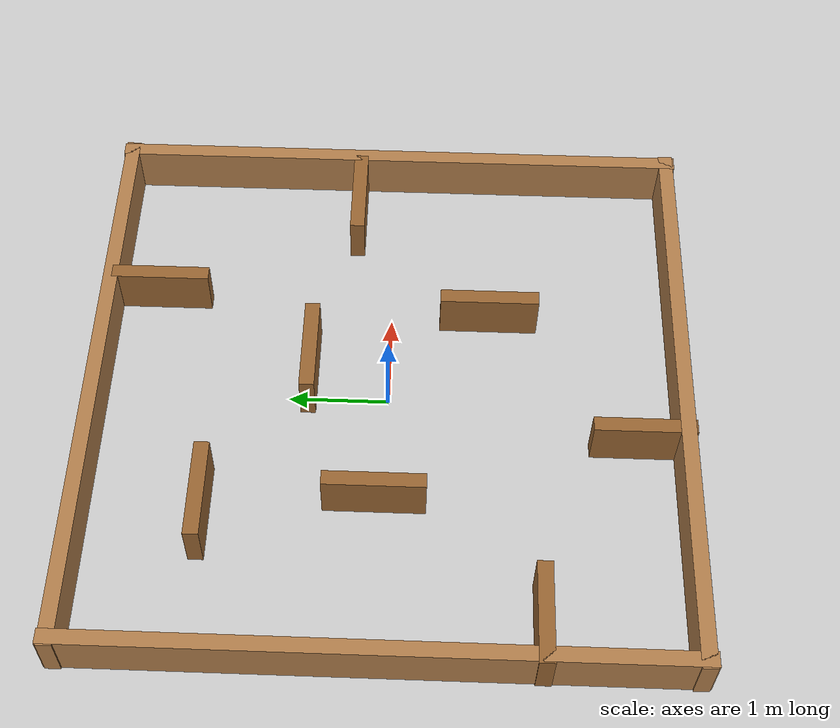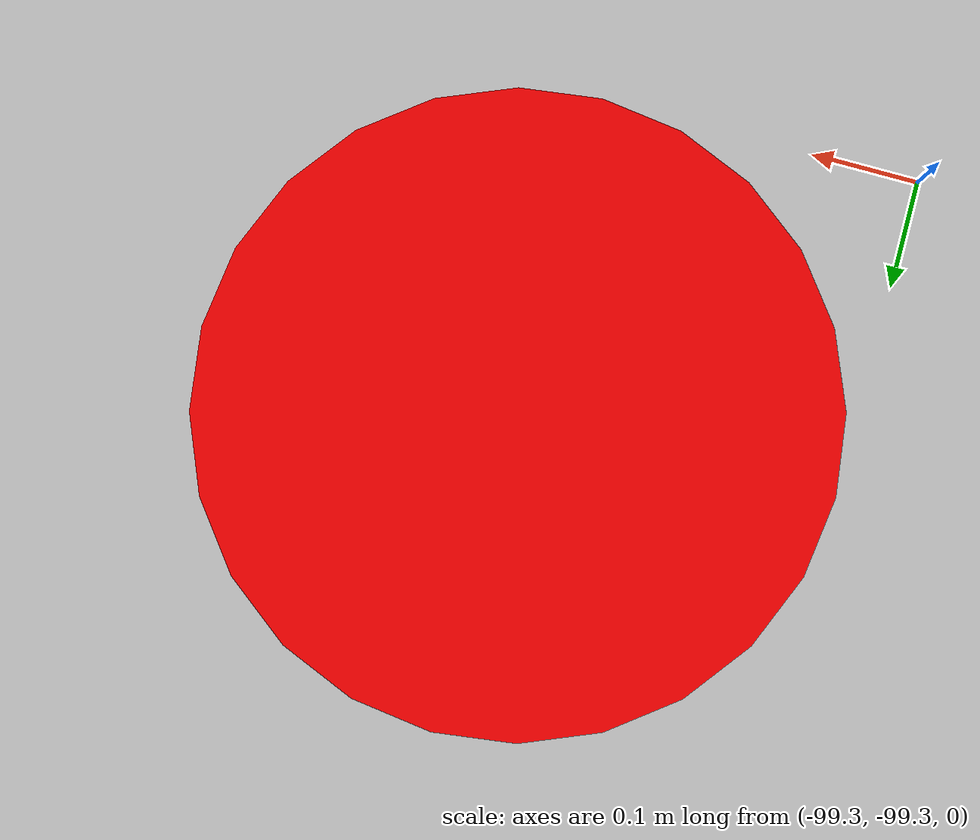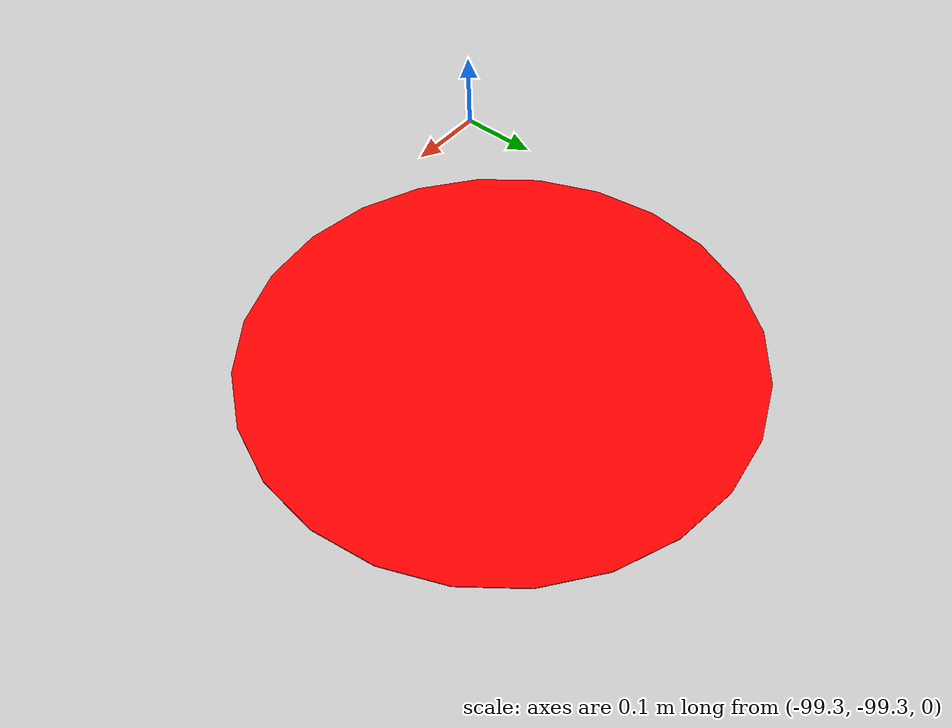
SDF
<?xml version="1.0" ?>
<sdf version="1.8">
  <world name="drl_stage7">

    <plugin filename="gz-sim-physics-system"           name="gz::sim::systems::Physics"/>
    <plugin filename="gz-sim-sensors-system"           name="gz::sim::systems::Sensors">
      <render_engine>ogre2</render_engine>
    </plugin>
    <plugin filename="gz-sim-user-commands-system"     name="gz::sim::systems::UserCommands"/>
    <plugin filename="gz-sim-scene-broadcaster-system" name="gz::sim::systems::SceneBroadcaster"/>

    <physics name="1ms" type="ignored">
      <max_step_size>0.001</max_step_size>
      <real_time_factor>1.0</real_time_factor>
    </physics>
    <scene>
      <ambient>0.4 0.4 0.4 1</ambient>
      <background>0.7 0.7 0.7 1</background>
    </scene>

    <light type="directional" name="sun">
      <cast_shadows>true</cast_shadows>
      <pose>0 0 10 0 0 0</pose>
      <diffuse>0.8 0.8 0.8 1</diffuse>
      <specular>0.2 0.2 0.2 1</specular>
      <direction>-0.5 0.1 -0.9</direction>
    </light>

    <model name="ground_plane">
      <static>true</static>
      <link name="link">
        <collision name="collision">
          <geometry><plane><normal>0 0 1</normal><size>20 20</size></plane></geometry>
        </collision>
        <visual name="visual">
          <geometry><plane><normal>0 0 1</normal><size>20 20</size></plane></geometry>
          <material><ambient>0.8 0.8 0.8 1</ambient><diffuse>0.8 0.8 0.8 1</diffuse></material>
        </visual>
      </link>
    </model>

    <!-- outer_walls_large: ±2.91 m, 6 m span walls -->
    <model name="outer_walls">
      <static>true</static>
      <link name="Wall_1">
        <pose>-2.91 0 0.25 0 0 1.5708</pose>
        <collision name="collision"><geometry><box><size>6 0.15 0.5</size></box></geometry></collision>
        <visual name="visual"><geometry><box><size>6 0.15 0.5</size></box></geometry><material><ambient>0.7 0.5 0.3 1</ambient><diffuse>0.7 0.5 0.3 1</diffuse></material></visual>
      </link>
      <link name="Wall_2">
        <pose>0 2.91 0.25 0 0 0</pose>
        <collision name="collision"><geometry><box><size>6 0.15 0.5</size></box></geometry></collision>
        <visual name="visual"><geometry><box><size>6 0.15 0.5</size></box></geometry><material><ambient>0.7 0.5 0.3 1</ambient><diffuse>0.7 0.5 0.3 1</diffuse></material></visual>
      </link>
      <link name="Wall_3">
        <pose>2.91 0 0.25 0 0 -1.5708</pose>
        <collision name="collision"><geometry><box><size>6 0.15 0.5</size></box></geometry></collision>
        <visual name="visual"><geometry><box><size>6 0.15 0.5</size></box></geometry><material><ambient>0.7 0.5 0.3 1</ambient><diffuse>0.7 0.5 0.3 1</diffuse></material></visual>
      </link>
      <link name="Wall_4">
        <pose>0 -2.91 0.25 0 0 3.14159</pose>
        <collision name="collision"><geometry><box><size>6 0.15 0.5</size></box></geometry></collision>
        <visual name="visual"><geometry><box><size>6 0.15 0.5</size></box></geometry><material><ambient>0.7 0.5 0.3 1</ambient><diffuse>0.7 0.5 0.3 1</diffuse></material></visual>
      </link>
    </model>

    <!-- inner_walls_large — 8 segments from turtlebot3_drl_world/inner_walls_large/model.sdf -->
    <model name="inner_walls">
      <static>true</static>
      <link name="inner_wall_1">
        <pose>-2.5 -1.5 0.25 0 0 0</pose>
        <collision name="collision"><geometry><box><size>1 0.15 0.5</size></box></geometry></collision>
        <visual name="visual"><geometry><box><size>1 0.15 0.5</size></box></geometry><material><ambient>0.6 0.4 0.2 1</ambient><diffuse>0.6 0.4 0.2 1</diffuse></material></visual>
      </link>
      <link name="inner_wall_2">
        <pose>-0.5 -2.5 0.25 0 0 -1.5708</pose>
        <collision name="collision"><geometry><box><size>1 0.15 0.5</size></box></geometry></collision>
        <visual name="visual"><geometry><box><size>1 0.15 0.5</size></box></geometry><material><ambient>0.6 0.4 0.2 1</ambient><diffuse>0.6 0.4 0.2 1</diffuse></material></visual>
      </link>
      <link name="inner_wall_3">
        <pose>1.0 -1.0 0.25 0 0 1.5708</pose>
        <collision name="collision"><geometry><box><size>1 0.15 0.5</size></box></geometry></collision>
        <visual name="visual"><geometry><box><size>1 0.15 0.5</size></box></geometry><material><ambient>0.6 0.4 0.2 1</ambient><diffuse>0.6 0.4 0.2 1</diffuse></material></visual>
      </link>
      <link name="inner_wall_4">
        <pose>1.2 2.4 0.25 0 0 -1.5708</pose>
        <collision name="collision"><geometry><box><size>1 0.15 0.5</size></box></geometry></collision>
        <visual name="visual"><geometry><box><size>1 0.15 0.5</size></box></geometry><material><ambient>0.6 0.4 0.2 1</ambient><diffuse>0.6 0.4 0.2 1</diffuse></material></visual>
      </link>
      <link name="inner_wall_5">
        <pose>2.4 0.4 0.25 0 0 0</pose>
        <collision name="collision"><geometry><box><size>1 0.15 0.5</size></box></geometry></collision>
        <visual name="visual"><geometry><box><size>1 0.15 0.5</size></box></geometry><material><ambient>0.6 0.4 0.2 1</ambient><diffuse>0.6 0.4 0.2 1</diffuse></material></visual>
      </link>
      <link name="inner_wall_6">
        <pose>-1.35 1.75 0.25 0 0 0</pose>
        <collision name="collision"><geometry><box><size>1 0.15 0.5</size></box></geometry></collision>
        <visual name="visual"><geometry><box><size>1 0.15 0.5</size></box></geometry><material><ambient>0.6 0.4 0.2 1</ambient><diffuse>0.6 0.4 0.2 1</diffuse></material></visual>
      </link>
      <link name="inner_wall_7">
        <pose>-1.2 0.092 0.25 0 0 -1.5708</pose>
        <collision name="collision"><geometry><box><size>1 0.15 0.5</size></box></geometry></collision>
        <visual name="visual"><geometry><box><size>1 0.15 0.5</size></box></geometry><material><ambient>0.6 0.4 0.2 1</ambient><diffuse>0.6 0.4 0.2 1</diffuse></material></visual>
      </link>
      <link name="inner_wall_8">
        <pose>0.35 0.8 0.25 0 0 0</pose>
        <collision name="collision"><geometry><box><size>1 0.15 0.5</size></box></geometry></collision>
        <visual name="visual"><geometry><box><size>1 0.15 0.5</size></box></geometry><material><ambient>0.6 0.4 0.2 1</ambient><diffuse>0.6 0.4 0.2 1</diffuse></material></visual>
      </link>
    </model>

    <model name="goal">
      <static>true</static>
      <pose>-99 -99 0 0 0 0</pose>
      <link name="goal_link">
        <visual name="visual">
          <pose>0 0 0.0005 0 0 0</pose>
          <geometry><cylinder><radius>0.3</radius><length>0.001</length></cylinder></geometry>
          <material><ambient>1 0 0 1</ambient><diffuse>1 0 0 1</diffuse></material>
        </visual>
      </link>
    </model>

  </world>
</sdf>
